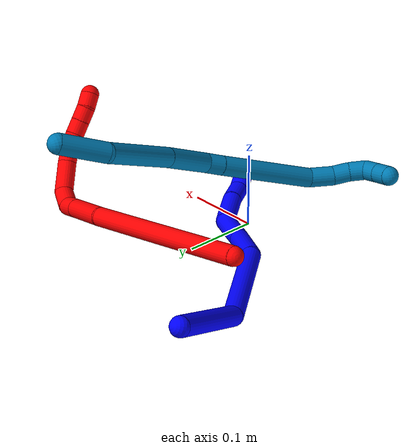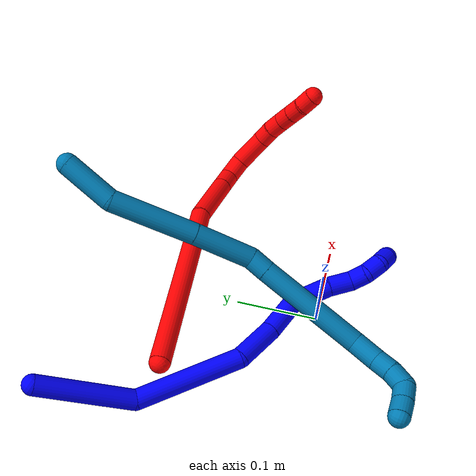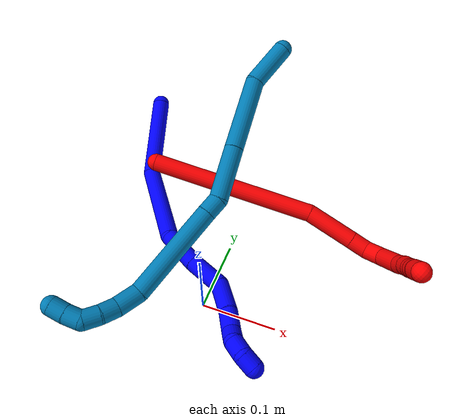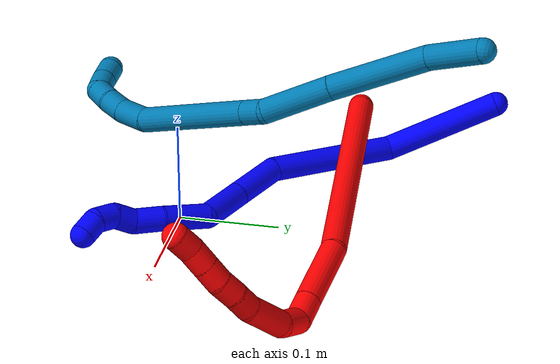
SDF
<sdf version="1.7">
 <world name="default">
  <model name="1">
   <static>0</static>
   <link name="1">
    <collision name="collision-cylinder-e_1_1_4">
     <pose>0.019959 -0.017338 -0.05426 2.83232 0.337024 1.65813</pose>
     <geometry><cylinder><radius>0.0125</radius><length>0.120717</length></cylinder></geometry>
     <surface>
      <friction><ode><mu>1.16</mu><mu2>1.16</mu2><slip1>0</slip1><slip2>0</slip2></ode></friction>
      <contact><ode><kp>1e+06</kp><kd>1</kd><max_vel>0</max_vel><min_depth>0.001</min_depth></ode></contact>
     </surface>
    </collision>
    <visual name="visual-cylinder-e_1_1_4">
     <pose>0.019959 -0.017338 -0.05426 2.83232 0.337024 1.65813</pose>
     <geometry><cylinder><radius>0.0125</radius><length>0.120717</length></cylinder></geometry>
     <material><ambient>0 0 1 1</ambient></material>
    </visual>
    <collision name="collision-cylinder-e_2_4_5">
     <pose>0.062798 -0.084125 -0.146135 2.22109 0.352846 0.690405</pose>
     <geometry><cylinder><radius>0.0125</radius><length>0.132418</length></cylinder></geometry>
     <surface>
      <friction><ode><mu>1.16</mu><mu2>1.16</mu2><slip1>0</slip1><slip2>0</slip2></ode></friction>
      <contact><ode><kp>1e+06</kp><kd>1</kd><max_vel>0</max_vel><min_depth>0.001</min_depth></ode></contact>
     </surface>
    </collision>
    <visual name="visual-cylinder-e_2_4_5">
     <pose>0.062798 -0.084125 -0.146135 2.22109 0.352846 0.690405</pose>
     <geometry><cylinder><radius>0.0125</radius><length>0.132418</length></cylinder></geometry>
     <material><ambient>0 0 1 1</ambient></material>
    </visual>
    <collision name="collision-cylinder-e_3_5_6">
     <pose>0.104698 -0.151912 -0.191782 1.98365 0.759797 1.09668</pose>
     <geometry><cylinder><radius>0.0125</radius><length>0.055229</length></cylinder></geometry>
     <surface>
      <friction><ode><mu>1.16</mu><mu2>1.16</mu2><slip1>0</slip1><slip2>0</slip2></ode></friction>
      <contact><ode><kp>1e+06</kp><kd>1</kd><max_vel>0</max_vel><min_depth>0.001</min_depth></ode></contact>
     </surface>
    </collision>
    <visual name="visual-cylinder-e_3_5_6">
     <pose>0.104698 -0.151912 -0.191782 1.98365 0.759797 1.09668</pose>
     <geometry><cylinder><radius>0.0125</radius><length>0.055229</length></cylinder></geometry>
     <material><ambient>0 0 1 1</ambient></material>
    </visual>
    <collision name="collision-cylinder-e_4_6_7">
     <pose>0.141054 -0.188532 -0.204009 1.79633 0.746039 0.913326</pose>
     <geometry><cylinder><radius>0.0125</radius><length>0.051082</length></cylinder></geometry>
     <surface>
      <friction><ode><mu>1.16</mu><mu2>1.16</mu2><slip1>0</slip1><slip2>0</slip2></ode></friction>
      <contact><ode><kp>1e+06</kp><kd>1</kd><max_vel>0</max_vel><min_depth>0.001</min_depth></ode></contact>
     </surface>
    </collision>
    <visual name="visual-cylinder-e_4_6_7">
     <pose>0.141054 -0.188532 -0.204009 1.79633 0.746039 0.913326</pose>
     <geometry><cylinder><radius>0.0125</radius><length>0.051082</length></cylinder></geometry>
     <material><ambient>0 0 1 1</ambient></material>
    </visual>
    <collision name="collision-cylinder-e_5_7_8">
     <pose>0.164236 -0.226201 -0.220756 2.14538 0.247926 0.450449</pose>
     <geometry><cylinder><radius>0.0125</radius><length>0.04765</length></cylinder></geometry>
     <surface>
      <friction><ode><mu>1.16</mu><mu2>1.16</mu2><slip1>0</slip1><slip2>0</slip2></ode></friction>
      <contact><ode><kp>1e+06</kp><kd>1</kd><max_vel>0</max_vel><min_depth>0.001</min_depth></ode></contact>
     </surface>
    </collision>
    <visual name="visual-cylinder-e_5_7_8">
     <pose>0.164236 -0.226201 -0.220756 2.14538 0.247926 0.450449</pose>
     <geometry><cylinder><radius>0.0125</radius><length>0.04765</length></cylinder></geometry>
     <material><ambient>0 0 1 1</ambient></material>
    </visual>
    <collision name="collision-cylinder-e_6_8_9">
     <pose>0.173553 -0.256266 -0.24294 2.30473 0.236818 0.522802</pose>
     <geometry><cylinder><radius>0.0125</radius><length>0.029584</length></cylinder></geometry>
     <surface>
      <friction><ode><mu>1.16</mu><mu2>1.16</mu2><slip1>0</slip1><slip2>0</slip2></ode></friction>
      <contact><ode><kp>1e+06</kp><kd>1</kd><max_vel>0</max_vel><min_depth>0.001</min_depth></ode></contact>
     </surface>
    </collision>
    <visual name="visual-cylinder-e_6_8_9">
     <pose>0.173553 -0.256266 -0.24294 2.30473 0.236818 0.522802</pose>
     <geometry><cylinder><radius>0.0125</radius><length>0.029584</length></cylinder></geometry>
     <material><ambient>0 0 1 1</ambient></material>
    </visual>
    <collision name="collision-cylinder-e_7_9_10">
     <pose>0.176508 -0.276547 -0.256816 1.98696 -0.049046 -0.075279</pose>
     <geometry><cylinder><radius>0.0125</radius><length>0.021025</length></cylinder></geometry>
     <surface>
      <friction><ode><mu>1.16</mu><mu2>1.16</mu2><slip1>0</slip1><slip2>0</slip2></ode></friction>
      <contact><ode><kp>1e+06</kp><kd>1</kd><max_vel>0</max_vel><min_depth>0.001</min_depth></ode></contact>
     </surface>
    </collision>
    <visual name="visual-cylinder-e_7_9_10">
     <pose>0.176508 -0.276547 -0.256816 1.98696 -0.049046 -0.075279</pose>
     <geometry><cylinder><radius>0.0125</radius><length>0.021025</length></cylinder></geometry>
     <material><ambient>0 0 1 1</ambient></material>
    </visual>
    <collision name="collision-cylinder-e_8_10_11">
     <pose>0.181027 -0.295027 -0.264874 1.97657 0.480416 0.711951</pose>
     <geometry><cylinder><radius>0.0125</radius><length>0.021787</length></cylinder></geometry>
     <surface>
      <friction><ode><mu>1.16</mu><mu2>1.16</mu2><slip1>0</slip1><slip2>0</slip2></ode></friction>
      <contact><ode><kp>1e+06</kp><kd>1</kd><max_vel>0</max_vel><min_depth>0.001</min_depth></ode></contact>
     </surface>
    </collision>
    <visual name="visual-cylinder-e_8_10_11">
     <pose>0.181027 -0.295027 -0.264874 1.97657 0.480416 0.711951</pose>
     <geometry><cylinder><radius>0.0125</radius><length>0.021787</length></cylinder></geometry>
     <material><ambient>0 0 1 1</ambient></material>
    </visual>
    <collision name="collision-cylinder-e_9_11_2">
     <pose>0.194608 -0.30855 -0.271928 2.17981 0.985376 1.59932</pose>
     <geometry><cylinder><radius>0.0125</radius><length>0.020508</length></cylinder></geometry>
     <surface>
      <friction><ode><mu>1.16</mu><mu2>1.16</mu2><slip1>0</slip1><slip2>0</slip2></ode></friction>
      <contact><ode><kp>1e+06</kp><kd>1</kd><max_vel>0</max_vel><min_depth>0.001</min_depth></ode></contact>
     </surface>
    </collision>
    <visual name="visual-cylinder-e_9_11_2">
     <pose>0.194608 -0.30855 -0.271928 2.17981 0.985376 1.59932</pose>
     <geometry><cylinder><radius>0.0125</radius><length>0.020508</length></cylinder></geometry>
     <material><ambient>0 0 1 1</ambient></material>
    </visual>
    <collision name="collision-sphere-2">
     <pose>0.203155 -0.313197 -0.275169 0 -0 0</pose>
     <geometry><sphere><radius>0.0125</radius></sphere></geometry>
     <surface>
      <friction><ode><mu>1.16</mu><mu2>1.16</mu2><slip1>0</slip1><slip2>0</slip2></ode></friction>
      <contact><ode><kp>1e+06</kp><kd>1</kd><max_vel>0</max_vel><min_depth>0.001</min_depth></ode></contact>
     </surface>
    </collision>
    <visual name="visual-sphere-2">
     <pose>0.203155 -0.313197 -0.275169 0 -0 0</pose>
     <geometry><sphere><radius>0.0125</radius></sphere></geometry>
     <material><ambient>0 0 1 1</ambient></material>
    </visual>
    <collision name="collision-sphere-11">
     <pose>0.186062 -0.303903 -0.268687 0 -0 0</pose>
     <geometry><sphere><radius>0.0125</radius></sphere></geometry>
     <surface>
      <friction><ode><mu>1.16</mu><mu2>1.16</mu2><slip1>0</slip1><slip2>0</slip2></ode></friction>
      <contact><ode><kp>1e+06</kp><kd>1</kd><max_vel>0</max_vel><min_depth>0.001</min_depth></ode></contact>
     </surface>
    </collision>
    <visual name="visual-sphere-11">
     <pose>0.186062 -0.303903 -0.268687 0 -0 0</pose>
     <geometry><sphere><radius>0.0125</radius></sphere></geometry>
     <material><ambient>0 0 1 1</ambient></material>
    </visual>
    <collision name="collision-sphere-10">
     <pose>0.175993 -0.286151 -0.261061 0 -0 0</pose>
     <geometry><sphere><radius>0.0125</radius></sphere></geometry>
     <surface>
      <friction><ode><mu>1.16</mu><mu2>1.16</mu2><slip1>0</slip1><slip2>0</slip2></ode></friction>
      <contact><ode><kp>1e+06</kp><kd>1</kd><max_vel>0</max_vel><min_depth>0.001</min_depth></ode></contact>
     </surface>
    </collision>
    <visual name="visual-sphere-10">
     <pose>0.175993 -0.286151 -0.261061 0 -0 0</pose>
     <geometry><sphere><radius>0.0125</radius></sphere></geometry>
     <material><ambient>0 0 1 1</ambient></material>
    </visual>
    <collision name="collision-sphere-9">
     <pose>0.177023 -0.266943 -0.252571 0 -0 0</pose>
     <geometry><sphere><radius>0.0125</radius></sphere></geometry>
     <surface>
      <friction><ode><mu>1.16</mu><mu2>1.16</mu2><slip1>0</slip1><slip2>0</slip2></ode></friction>
      <contact><ode><kp>1e+06</kp><kd>1</kd><max_vel>0</max_vel><min_depth>0.001</min_depth></ode></contact>
     </surface>
    </collision>
    <visual name="visual-sphere-9">
     <pose>0.177023 -0.266943 -0.252571 0 -0 0</pose>
     <geometry><sphere><radius>0.0125</radius></sphere></geometry>
     <material><ambient>0 0 1 1</ambient></material>
    </visual>
    <collision name="collision-sphere-4">
     <pose>0.039919 -0.034675 -0.10852 0 -0 0</pose>
     <geometry><sphere><radius>0.0125</radius></sphere></geometry>
     <surface>
      <friction><ode><mu>1.16</mu><mu2>1.16</mu2><slip1>0</slip1><slip2>0</slip2></ode></friction>
      <contact><ode><kp>1e+06</kp><kd>1</kd><max_vel>0</max_vel><min_depth>0.001</min_depth></ode></contact>
     </surface>
    </collision>
    <visual name="visual-sphere-4">
     <pose>0.039919 -0.034675 -0.10852 0 -0 0</pose>
     <geometry><sphere><radius>0.0125</radius></sphere></geometry>
     <material><ambient>0 0 1 1</ambient></material>
    </visual>
    <collision name="collision-sphere-1">
     <geometry><sphere><radius>0.0125</radius></sphere></geometry>
     <surface>
      <friction><ode><mu>1.16</mu><mu2>1.16</mu2><slip1>0</slip1><slip2>0</slip2></ode></friction>
      <contact><ode><kp>1e+06</kp><kd>1</kd><max_vel>0</max_vel><min_depth>0.001</min_depth></ode></contact>
     </surface>
    </collision>
    <visual name="visual-sphere-1">
     <geometry><sphere><radius>0.0125</radius></sphere></geometry>
     <material><ambient>0 0 1 1</ambient></material>
    </visual>
    <collision name="collision-sphere-8">
     <pose>0.170083 -0.245589 -0.233309 0 -0 0</pose>
     <geometry><sphere><radius>0.0125</radius></sphere></geometry>
     <surface>
      <friction><ode><mu>1.16</mu><mu2>1.16</mu2><slip1>0</slip1><slip2>0</slip2></ode></friction>
      <contact><ode><kp>1e+06</kp><kd>1</kd><max_vel>0</max_vel><min_depth>0.001</min_depth></ode></contact>
     </surface>
    </collision>
    <visual name="visual-sphere-8">
     <pose>0.170083 -0.245589 -0.233309 0 -0 0</pose>
     <geometry><sphere><radius>0.0125</radius></sphere></geometry>
     <material><ambient>0 0 1 1</ambient></material>
    </visual>
    <collision name="collision-sphere-5">
     <pose>0.085678 -0.133574 -0.18375 0 -0 0</pose>
     <geometry><sphere><radius>0.0125</radius></sphere></geometry>
     <surface>
      <friction><ode><mu>1.16</mu><mu2>1.16</mu2><slip1>0</slip1><slip2>0</slip2></ode></friction>
      <contact><ode><kp>1e+06</kp><kd>1</kd><max_vel>0</max_vel><min_depth>0.001</min_depth></ode></contact>
     </surface>
    </collision>
    <visual name="visual-sphere-5">
     <pose>0.085678 -0.133574 -0.18375 0 -0 0</pose>
     <geometry><sphere><radius>0.0125</radius></sphere></geometry>
     <material><ambient>0 0 1 1</ambient></material>
    </visual>
    <collision name="collision-sphere-6">
     <pose>0.123718 -0.17025 -0.199815 0 -0 0</pose>
     <geometry><sphere><radius>0.0125</radius></sphere></geometry>
     <surface>
      <friction><ode><mu>1.16</mu><mu2>1.16</mu2><slip1>0</slip1><slip2>0</slip2></ode></friction>
      <contact><ode><kp>1e+06</kp><kd>1</kd><max_vel>0</max_vel><min_depth>0.001</min_depth></ode></contact>
     </surface>
    </collision>
    <visual name="visual-sphere-6">
     <pose>0.123718 -0.17025 -0.199815 0 -0 0</pose>
     <geometry><sphere><radius>0.0125</radius></sphere></geometry>
     <material><ambient>0 0 1 1</ambient></material>
    </visual>
    <collision name="collision-sphere-7">
     <pose>0.15839 -0.206814 -0.208204 0 -0 0</pose>
     <geometry><sphere><radius>0.0125</radius></sphere></geometry>
     <surface>
      <friction><ode><mu>1.16</mu><mu2>1.16</mu2><slip1>0</slip1><slip2>0</slip2></ode></friction>
      <contact><ode><kp>1e+06</kp><kd>1</kd><max_vel>0</max_vel><min_depth>0.001</min_depth></ode></contact>
     </surface>
    </collision>
    <visual name="visual-sphere-7">
     <pose>0.15839 -0.206814 -0.208204 0 -0 0</pose>
     <geometry><sphere><radius>0.0125</radius></sphere></geometry>
     <material><ambient>0 0 1 1</ambient></material>
    </visual>
    <inertial>
     <pose>0.096638 -0.136366 -0.162735 0 -0 0</pose>
     <mass>0.5</mass>
     <inertia><ixx>0.00046</ixx><ixy>0</ixy><ixz>0</ixz><iyy>0.000238</iyy><iyz>0</iyz><izz>6.1e-05</izz></inertia>
    </inertial>
   </link>
   <pose>-0.19469 0.288514 0.060699 -1.00611 0.673209 0.157013</pose>
  </model>
  <model name="2">
   <static>0</static>
   <link name="2">
    <collision name="collision-cylinder-e_1_1_4">
     <pose>0.040226 0.02099 0.108303 -0.19143 0.349651 -0.033913</pose>
     <geometry><cylinder><radius>0.0125</radius><length>0.234846</length></cylinder></geometry>
     <surface>
      <friction><ode><mu>1.16</mu><mu2>1.16</mu2><slip1>0</slip1><slip2>0</slip2></ode></friction>
      <contact><ode><kp>1e+06</kp><kd>1</kd><max_vel>0</max_vel><min_depth>0.001</min_depth></ode></contact>
     </surface>
    </collision>
    <visual name="visual-cylinder-e_1_1_4">
     <pose>0.040226 0.02099 0.108303 -0.19143 0.349651 -0.033913</pose>
     <geometry><cylinder><radius>0.0125</radius><length>0.234846</length></cylinder></geometry>
     <material><ambient>1 0 0 1</ambient></material>
    </visual>
    <collision name="collision-cylinder-e_2_4_5">
     <pose>0.084315 0.044741 0.2509 -0.080357 0.111834 -0.0045</pose>
     <geometry><cylinder><radius>0.0125</radius><length>0.069241</length></cylinder></geometry>
     <surface>
      <friction><ode><mu>1.16</mu><mu2>1.16</mu2><slip1>0</slip1><slip2>0</slip2></ode></friction>
      <contact><ode><kp>1e+06</kp><kd>1</kd><max_vel>0</max_vel><min_depth>0.001</min_depth></ode></contact>
     </surface>
    </collision>
    <visual name="visual-cylinder-e_2_4_5">
     <pose>0.084315 0.044741 0.2509 -0.080357 0.111834 -0.0045</pose>
     <geometry><cylinder><radius>0.0125</radius><length>0.069241</length></cylinder></geometry>
     <material><ambient>1 0 0 1</ambient></material>
    </visual>
    <collision name="collision-cylinder-e_3_5_6">
     <pose>0.08964 0.048334 0.297953 -0.06509 0.113775 -0.003708</pose>
     <geometry><cylinder><radius>0.0125</radius><length>0.025742</length></cylinder></geometry>
     <surface>
      <friction><ode><mu>1.16</mu><mu2>1.16</mu2><slip1>0</slip1><slip2>0</slip2></ode></friction>
      <contact><ode><kp>1e+06</kp><kd>1</kd><max_vel>0</max_vel><min_depth>0.001</min_depth></ode></contact>
     </surface>
    </collision>
    <visual name="visual-cylinder-e_3_5_6">
     <pose>0.08964 0.048334 0.297953 -0.06509 0.113775 -0.003708</pose>
     <geometry><cylinder><radius>0.0125</radius><length>0.025742</length></cylinder></geometry>
     <material><ambient>1 0 0 1</ambient></material>
    </visual>
    <collision name="collision-cylinder-e_4_6_7">
     <pose>0.089208 0.057508 0.321039 -0.679606 -0.14167 0.050156</pose>
     <geometry><cylinder><radius>0.0125</radius><length>0.026816</length></cylinder></geometry>
     <surface>
      <friction><ode><mu>1.16</mu><mu2>1.16</mu2><slip1>0</slip1><slip2>0</slip2></ode></friction>
      <contact><ode><kp>1e+06</kp><kd>1</kd><max_vel>0</max_vel><min_depth>0.001</min_depth></ode></contact>
     </surface>
    </collision>
    <visual name="visual-cylinder-e_4_6_7">
     <pose>0.089208 0.057508 0.321039 -0.679606 -0.14167 0.050156</pose>
     <geometry><cylinder><radius>0.0125</radius><length>0.026816</length></cylinder></geometry>
     <material><ambient>1 0 0 1</ambient></material>
    </visual>
    <collision name="collision-cylinder-e_5_7_8">
     <pose>0.078689 0.083511 0.340055 -1.11343 -0.413029 0.259317</pose>
     <geometry><cylinder><radius>0.0125</radius><length>0.042982</length></cylinder></geometry>
     <surface>
      <friction><ode><mu>1.16</mu><mu2>1.16</mu2><slip1>0</slip1><slip2>0</slip2></ode></friction>
      <contact><ode><kp>1e+06</kp><kd>1</kd><max_vel>0</max_vel><min_depth>0.001</min_depth></ode></contact>
     </surface>
    </collision>
    <visual name="visual-cylinder-e_5_7_8">
     <pose>0.078689 0.083511 0.340055 -1.11343 -0.413029 0.259317</pose>
     <geometry><cylinder><radius>0.0125</radius><length>0.042982</length></cylinder></geometry>
     <material><ambient>1 0 0 1</ambient></material>
    </visual>
    <collision name="collision-cylinder-e_6_8_9">
     <pose>0.065761 0.110147 0.350357 -1.3934 -0.440777 0.37057</pose>
     <geometry><cylinder><radius>0.0125</radius><length>0.020164</length></cylinder></geometry>
     <surface>
      <friction><ode><mu>1.16</mu><mu2>1.16</mu2><slip1>0</slip1><slip2>0</slip2></ode></friction>
      <contact><ode><kp>1e+06</kp><kd>1</kd><max_vel>0</max_vel><min_depth>0.001</min_depth></ode></contact>
     </surface>
    </collision>
    <visual name="visual-cylinder-e_6_8_9">
     <pose>0.065761 0.110147 0.350357 -1.3934 -0.440777 0.37057</pose>
     <geometry><cylinder><radius>0.0125</radius><length>0.020164</length></cylinder></geometry>
     <material><ambient>1 0 0 1</ambient></material>
    </visual>
    <collision name="collision-cylinder-e_7_9_10">
     <pose>0.055994 0.127478 0.353376 -1.40358 -0.572823 0.488009</pose>
     <geometry><cylinder><radius>0.0125</radius><length>0.020167</length></cylinder></geometry>
     <surface>
      <friction><ode><mu>1.16</mu><mu2>1.16</mu2><slip1>0</slip1><slip2>0</slip2></ode></friction>
      <contact><ode><kp>1e+06</kp><kd>1</kd><max_vel>0</max_vel><min_depth>0.001</min_depth></ode></contact>
     </surface>
    </collision>
    <visual name="visual-cylinder-e_7_9_10">
     <pose>0.055994 0.127478 0.353376 -1.40358 -0.572823 0.488009</pose>
     <geometry><cylinder><radius>0.0125</radius><length>0.020167</length></cylinder></geometry>
     <material><ambient>1 0 0 1</ambient></material>
    </visual>
    <collision name="collision-cylinder-e_8_10_11">
     <pose>0.044956 0.144144 0.354418 -1.61514 -0.590266 0.615416</pose>
     <geometry><cylinder><radius>0.0125</radius><length>0.020025</length></cylinder></geometry>
     <surface>
      <friction><ode><mu>1.16</mu><mu2>1.16</mu2><slip1>0</slip1><slip2>0</slip2></ode></friction>
      <contact><ode><kp>1e+06</kp><kd>1</kd><max_vel>0</max_vel><min_depth>0.001</min_depth></ode></contact>
     </surface>
    </collision>
    <visual name="visual-cylinder-e_8_10_11">
     <pose>0.044956 0.144144 0.354418 -1.61514 -0.590266 0.615416</pose>
     <geometry><cylinder><radius>0.0125</radius><length>0.020025</length></cylinder></geometry>
     <material><ambient>1 0 0 1</ambient></material>
    </visual>
    <collision name="collision-cylinder-e_9_11_12">
     <pose>0.033812 0.160754 0.353675 -1.61583 -0.590733 0.616293</pose>
     <geometry><cylinder><radius>0.0125</radius><length>0.020009</length></cylinder></geometry>
     <surface>
      <friction><ode><mu>1.16</mu><mu2>1.16</mu2><slip1>0</slip1><slip2>0</slip2></ode></friction>
      <contact><ode><kp>1e+06</kp><kd>1</kd><max_vel>0</max_vel><min_depth>0.001</min_depth></ode></contact>
     </surface>
    </collision>
    <visual name="visual-cylinder-e_9_11_12">
     <pose>0.033812 0.160754 0.353675 -1.61583 -0.590733 0.616293</pose>
     <geometry><cylinder><radius>0.0125</radius><length>0.020009</length></cylinder></geometry>
     <material><ambient>1 0 0 1</ambient></material>
    </visual>
    <collision name="collision-cylinder-e_10_12_2">
     <pose>0.023206 0.177564 0.354831 -1.39288 -0.527218 0.443939</pose>
     <geometry><cylinder><radius>0.0125</radius><length>0.020008</length></cylinder></geometry>
     <surface>
      <friction><ode><mu>1.16</mu><mu2>1.16</mu2><slip1>0</slip1><slip2>0</slip2></ode></friction>
      <contact><ode><kp>1e+06</kp><kd>1</kd><max_vel>0</max_vel><min_depth>0.001</min_depth></ode></contact>
     </surface>
    </collision>
    <visual name="visual-cylinder-e_10_12_2">
     <pose>0.023206 0.177564 0.354831 -1.39288 -0.527218 0.443939</pose>
     <geometry><cylinder><radius>0.0125</radius><length>0.020008</length></cylinder></geometry>
     <material><ambient>1 0 0 1</ambient></material>
    </visual>
    <collision name="collision-sphere-2">
     <pose>0.018173 0.186073 0.356361 0 -0 0</pose>
     <geometry><sphere><radius>0.0125</radius></sphere></geometry>
     <surface>
      <friction><ode><mu>1.16</mu><mu2>1.16</mu2><slip1>0</slip1><slip2>0</slip2></ode></friction>
      <contact><ode><kp>1e+06</kp><kd>1</kd><max_vel>0</max_vel><min_depth>0.001</min_depth></ode></contact>
     </surface>
    </collision>
    <visual name="visual-sphere-2">
     <pose>0.018173 0.186073 0.356361 0 -0 0</pose>
     <geometry><sphere><radius>0.0125</radius></sphere></geometry>
     <material><ambient>1 0 0 1</ambient></material>
    </visual>
    <collision name="collision-sphere-12">
     <pose>0.028239 0.169055 0.353301 0 -0 0</pose>
     <geometry><sphere><radius>0.0125</radius></sphere></geometry>
     <surface>
      <friction><ode><mu>1.16</mu><mu2>1.16</mu2><slip1>0</slip1><slip2>0</slip2></ode></friction>
      <contact><ode><kp>1e+06</kp><kd>1</kd><max_vel>0</max_vel><min_depth>0.001</min_depth></ode></contact>
     </surface>
    </collision>
    <visual name="visual-sphere-12">
     <pose>0.028239 0.169055 0.353301 0 -0 0</pose>
     <geometry><sphere><radius>0.0125</radius></sphere></geometry>
     <material><ambient>1 0 0 1</ambient></material>
    </visual>
    <collision name="collision-sphere-11">
     <pose>0.039384 0.152454 0.354049 0 -0 0</pose>
     <geometry><sphere><radius>0.0125</radius></sphere></geometry>
     <surface>
      <friction><ode><mu>1.16</mu><mu2>1.16</mu2><slip1>0</slip1><slip2>0</slip2></ode></friction>
      <contact><ode><kp>1e+06</kp><kd>1</kd><max_vel>0</max_vel><min_depth>0.001</min_depth></ode></contact>
     </surface>
    </collision>
    <visual name="visual-sphere-11">
     <pose>0.039384 0.152454 0.354049 0 -0 0</pose>
     <geometry><sphere><radius>0.0125</radius></sphere></geometry>
     <material><ambient>1 0 0 1</ambient></material>
    </visual>
    <collision name="collision-sphere-10">
     <pose>0.050529 0.135834 0.354786 0 -0 0</pose>
     <geometry><sphere><radius>0.0125</radius></sphere></geometry>
     <surface>
      <friction><ode><mu>1.16</mu><mu2>1.16</mu2><slip1>0</slip1><slip2>0</slip2></ode></friction>
      <contact><ode><kp>1e+06</kp><kd>1</kd><max_vel>0</max_vel><min_depth>0.001</min_depth></ode></contact>
     </surface>
    </collision>
    <visual name="visual-sphere-10">
     <pose>0.050529 0.135834 0.354786 0 -0 0</pose>
     <geometry><sphere><radius>0.0125</radius></sphere></geometry>
     <material><ambient>1 0 0 1</ambient></material>
    </visual>
    <collision name="collision-sphere-9">
     <pose>0.06146 0.119122 0.351966 0 -0 0</pose>
     <geometry><sphere><radius>0.0125</radius></sphere></geometry>
     <surface>
      <friction><ode><mu>1.16</mu><mu2>1.16</mu2><slip1>0</slip1><slip2>0</slip2></ode></friction>
      <contact><ode><kp>1e+06</kp><kd>1</kd><max_vel>0</max_vel><min_depth>0.001</min_depth></ode></contact>
     </surface>
    </collision>
    <visual name="visual-sphere-9">
     <pose>0.06146 0.119122 0.351966 0 -0 0</pose>
     <geometry><sphere><radius>0.0125</radius></sphere></geometry>
     <material><ambient>1 0 0 1</ambient></material>
    </visual>
    <collision name="collision-sphere-4">
     <pose>0.080451 0.041979 0.216606 0 -0 0</pose>
     <geometry><sphere><radius>0.0125</radius></sphere></geometry>
     <surface>
      <friction><ode><mu>1.16</mu><mu2>1.16</mu2><slip1>0</slip1><slip2>0</slip2></ode></friction>
      <contact><ode><kp>1e+06</kp><kd>1</kd><max_vel>0</max_vel><min_depth>0.001</min_depth></ode></contact>
     </surface>
    </collision>
    <visual name="visual-sphere-4">
     <pose>0.080451 0.041979 0.216606 0 -0 0</pose>
     <geometry><sphere><radius>0.0125</radius></sphere></geometry>
     <material><ambient>1 0 0 1</ambient></material>
    </visual>
    <collision name="collision-sphere-1">
     <geometry><sphere><radius>0.0125</radius></sphere></geometry>
     <surface>
      <friction><ode><mu>1.16</mu><mu2>1.16</mu2><slip1>0</slip1><slip2>0</slip2></ode></friction>
      <contact><ode><kp>1e+06</kp><kd>1</kd><max_vel>0</max_vel><min_depth>0.001</min_depth></ode></contact>
     </surface>
    </collision>
    <visual name="visual-sphere-1">
     <geometry><sphere><radius>0.0125</radius></sphere></geometry>
     <material><ambient>1 0 0 1</ambient></material>
    </visual>
    <collision name="collision-sphere-8">
     <pose>0.070063 0.101172 0.348747 0 -0 0</pose>
     <geometry><sphere><radius>0.0125</radius></sphere></geometry>
     <surface>
      <friction><ode><mu>1.16</mu><mu2>1.16</mu2><slip1>0</slip1><slip2>0</slip2></ode></friction>
      <contact><ode><kp>1e+06</kp><kd>1</kd><max_vel>0</max_vel><min_depth>0.001</min_depth></ode></contact>
     </surface>
    </collision>
    <visual name="visual-sphere-8">
     <pose>0.070063 0.101172 0.348747 0 -0 0</pose>
     <geometry><sphere><radius>0.0125</radius></sphere></geometry>
     <material><ambient>1 0 0 1</ambient></material>
    </visual>
    <collision name="collision-sphere-5">
     <pose>0.088179 0.047502 0.285193 0 -0 0</pose>
     <geometry><sphere><radius>0.0125</radius></sphere></geometry>
     <surface>
      <friction><ode><mu>1.16</mu><mu2>1.16</mu2><slip1>0</slip1><slip2>0</slip2></ode></friction>
      <contact><ode><kp>1e+06</kp><kd>1</kd><max_vel>0</max_vel><min_depth>0.001</min_depth></ode></contact>
     </surface>
    </collision>
    <visual name="visual-sphere-5">
     <pose>0.088179 0.047502 0.285193 0 -0 0</pose>
     <geometry><sphere><radius>0.0125</radius></sphere></geometry>
     <material><ambient>1 0 0 1</ambient></material>
    </visual>
    <collision name="collision-sphere-6">
     <pose>0.091101 0.049166 0.310714 0 -0 0</pose>
     <geometry><sphere><radius>0.0125</radius></sphere></geometry>
     <surface>
      <friction><ode><mu>1.16</mu><mu2>1.16</mu2><slip1>0</slip1><slip2>0</slip2></ode></friction>
      <contact><ode><kp>1e+06</kp><kd>1</kd><max_vel>0</max_vel><min_depth>0.001</min_depth></ode></contact>
     </surface>
    </collision>
    <visual name="visual-sphere-6">
     <pose>0.091101 0.049166 0.310714 0 -0 0</pose>
     <geometry><sphere><radius>0.0125</radius></sphere></geometry>
     <material><ambient>1 0 0 1</ambient></material>
    </visual>
    <collision name="collision-sphere-7">
     <pose>0.087315 0.065851 0.331363 0 -0 0</pose>
     <geometry><sphere><radius>0.0125</radius></sphere></geometry>
     <surface>
      <friction><ode><mu>1.16</mu><mu2>1.16</mu2><slip1>0</slip1><slip2>0</slip2></ode></friction>
      <contact><ode><kp>1e+06</kp><kd>1</kd><max_vel>0</max_vel><min_depth>0.001</min_depth></ode></contact>
     </surface>
    </collision>
    <visual name="visual-sphere-7">
     <pose>0.087315 0.065851 0.331363 0 -0 0</pose>
     <geometry><sphere><radius>0.0125</radius></sphere></geometry>
     <material><ambient>1 0 0 1</ambient></material>
    </visual>
    <inertial>
     <pose>0.055726 0.057701 0.218333 0 -0 0</pose>
     <mass>0.5</mass>
     <inertia>
      <ixx>0.001042</ixx>
      <ixy>0</ixy>
      <ixz>0</ixz>
      <iyy>0.001097</iyy>
      <iyz>0</iyz>
      <izz>-0.000553</izz>
     </inertia>
    </inertial>
   </link>
   <pose>-0.137973 0.156753 0.071999 1.91797 0.007775 1.28893</pose>
  </model>
  <model name="9">
   <static>0</static>
   <link name="9">
    <collision name="collision-cylinder-e_1_1_4">
     <pose>-0.008595 -0.007652 -0.028363 2.87809 -0.284638 -1.64886</pose>
     <geometry><cylinder><radius>0.0125</radius><length>0.061217</length></cylinder></geometry>
     <surface>
      <friction><ode><mu>1.16</mu><mu2>1.16</mu2><slip1>0</slip1><slip2>0</slip2></ode></friction>
      <contact><ode><kp>1e+06</kp><kd>1</kd><max_vel>0</max_vel><min_depth>0.001</min_depth></ode></contact>
     </surface>
    </collision>
    <visual name="visual-cylinder-e_1_1_4">
     <pose>-0.008595 -0.007652 -0.028363 2.87809 -0.284638 -1.64886</pose>
     <geometry><cylinder><radius>0.0125</radius><length>0.061217</length></cylinder></geometry>
     <material><ambient>0 0.490196 0.709804 1</ambient></material>
    </visual>
    <collision name="collision-cylinder-e_2_4_5">
     <pose>-0.039012 -0.009665 -0.101736 -3.01697 -0.448384 2.60742</pose>
     <geometry><cylinder><radius>0.0125</radius><length>0.100675</length></cylinder></geometry>
     <surface>
      <friction><ode><mu>1.16</mu><mu2>1.16</mu2><slip1>0</slip1><slip2>0</slip2></ode></friction>
      <contact><ode><kp>1e+06</kp><kd>1</kd><max_vel>0</max_vel><min_depth>0.001</min_depth></ode></contact>
     </surface>
    </collision>
    <visual name="visual-cylinder-e_2_4_5">
     <pose>-0.039012 -0.009665 -0.101736 -3.01697 -0.448384 2.60742</pose>
     <geometry><cylinder><radius>0.0125</radius><length>0.100675</length></cylinder></geometry>
     <material><ambient>0 0.490196 0.709804 1</ambient></material>
    </visual>
    <collision name="collision-cylinder-e_3_5_6">
     <pose>-0.077526 -0.000706 -0.177925 -3.03551 -0.489195 2.72243</pose>
     <geometry><cylinder><radius>0.0125</radius><length>0.071044</length></cylinder></geometry>
     <surface>
      <friction><ode><mu>1.16</mu><mu2>1.16</mu2><slip1>0</slip1><slip2>0</slip2></ode></friction>
      <contact><ode><kp>1e+06</kp><kd>1</kd><max_vel>0</max_vel><min_depth>0.001</min_depth></ode></contact>
     </surface>
    </collision>
    <visual name="visual-cylinder-e_3_5_6">
     <pose>-0.077526 -0.000706 -0.177925 -3.03551 -0.489195 2.72243</pose>
     <geometry><cylinder><radius>0.0125</radius><length>0.071044</length></cylinder></geometry>
     <material><ambient>0 0.490196 0.709804 1</ambient></material>
    </visual>
    <collision name="collision-cylinder-e_4_6_7">
     <pose>-0.09703 -0.000391 -0.219747 2.86639 -0.248933 -1.4695</pose>
     <geometry><cylinder><radius>0.0125</radius><length>0.022822</length></cylinder></geometry>
     <surface>
      <friction><ode><mu>1.16</mu><mu2>1.16</mu2><slip1>0</slip1><slip2>0</slip2></ode></friction>
      <contact><ode><kp>1e+06</kp><kd>1</kd><max_vel>0</max_vel><min_depth>0.001</min_depth></ode></contact>
     </surface>
    </collision>
    <visual name="visual-cylinder-e_4_6_7">
     <pose>-0.09703 -0.000391 -0.219747 2.86639 -0.248933 -1.4695</pose>
     <geometry><cylinder><radius>0.0125</radius><length>0.022822</length></cylinder></geometry>
     <material><ambient>0 0.490196 0.709804 1</ambient></material>
    </visual>
    <collision name="collision-cylinder-e_5_7_8">
     <pose>-0.115859 -0.018165 -0.290638 2.9012 -0.252697 -1.62122</pose>
     <geometry><cylinder><radius>0.0125</radius><length>0.128132</length></cylinder></geometry>
     <surface>
      <friction><ode><mu>1.16</mu><mu2>1.16</mu2><slip1>0</slip1><slip2>0</slip2></ode></friction>
      <contact><ode><kp>1e+06</kp><kd>1</kd><max_vel>0</max_vel><min_depth>0.001</min_depth></ode></contact>
     </surface>
    </collision>
    <visual name="visual-cylinder-e_5_7_8">
     <pose>-0.115859 -0.018165 -0.290638 2.9012 -0.252697 -1.62122</pose>
     <geometry><cylinder><radius>0.0125</radius><length>0.128132</length></cylinder></geometry>
     <material><ambient>0 0.490196 0.709804 1</ambient></material>
    </visual>
    <collision name="collision-cylinder-e_6_8_9">
     <pose>-0.130461 -0.037774 -0.366115 2.83385 0.088331 0.555167</pose>
     <geometry><cylinder><radius>0.0125</radius><length>0.032085</length></cylinder></geometry>
     <surface>
      <friction><ode><mu>1.16</mu><mu2>1.16</mu2><slip1>0</slip1><slip2>0</slip2></ode></friction>
      <contact><ode><kp>1e+06</kp><kd>1</kd><max_vel>0</max_vel><min_depth>0.001</min_depth></ode></contact>
     </surface>
    </collision>
    <visual name="visual-cylinder-e_6_8_9">
     <pose>-0.130461 -0.037774 -0.366115 2.83385 0.088331 0.555167</pose>
     <geometry><cylinder><radius>0.0125</radius><length>0.032085</length></cylinder></geometry>
     <material><ambient>0 0.490196 0.709804 1</ambient></material>
    </visual>
    <collision name="collision-cylinder-e_7_9_10">
     <pose>-0.125807 -0.045771 -0.391312 2.83489 0.300363 1.54959</pose>
     <geometry><cylinder><radius>0.0125</radius><length>0.021891</length></cylinder></geometry>
     <surface>
      <friction><ode><mu>1.16</mu><mu2>1.16</mu2><slip1>0</slip1><slip2>0</slip2></ode></friction>
      <contact><ode><kp>1e+06</kp><kd>1</kd><max_vel>0</max_vel><min_depth>0.001</min_depth></ode></contact>
     </surface>
    </collision>
    <visual name="visual-cylinder-e_7_9_10">
     <pose>-0.125807 -0.045771 -0.391312 2.83489 0.300363 1.54959</pose>
     <geometry><cylinder><radius>0.0125</radius><length>0.021891</length></cylinder></geometry>
     <material><ambient>0 0.490196 0.709804 1</ambient></material>
    </visual>
    <collision name="collision-cylinder-e_8_10_11">
     <pose>-0.119304 -0.05393 -0.410419 2.64079 0.303653 1.07819</pose>
     <geometry><cylinder><radius>0.0125</radius><length>0.021836</length></cylinder></geometry>
     <surface>
      <friction><ode><mu>1.16</mu><mu2>1.16</mu2><slip1>0</slip1><slip2>0</slip2></ode></friction>
      <contact><ode><kp>1e+06</kp><kd>1</kd><max_vel>0</max_vel><min_depth>0.001</min_depth></ode></contact>
     </surface>
    </collision>
    <visual name="visual-cylinder-e_8_10_11">
     <pose>-0.119304 -0.05393 -0.410419 2.64079 0.303653 1.07819</pose>
     <geometry><cylinder><radius>0.0125</radius><length>0.021836</length></cylinder></geometry>
     <material><ambient>0 0.490196 0.709804 1</ambient></material>
    </visual>
    <collision name="collision-cylinder-e_9_11_12">
     <pose>-0.111519 -0.06773 -0.421726 1.81239 0.462741 0.584175</pose>
     <geometry><cylinder><radius>0.0125</radius><length>0.020251</length></cylinder></geometry>
     <surface>
      <friction><ode><mu>1.16</mu><mu2>1.16</mu2><slip1>0</slip1><slip2>0</slip2></ode></friction>
      <contact><ode><kp>1e+06</kp><kd>1</kd><max_vel>0</max_vel><min_depth>0.001</min_depth></ode></contact>
     </surface>
    </collision>
    <visual name="visual-cylinder-e_9_11_12">
     <pose>-0.111519 -0.06773 -0.421726 1.81239 0.462741 0.584175</pose>
     <geometry><cylinder><radius>0.0125</radius><length>0.020251</length></cylinder></geometry>
     <material><ambient>0 0.490196 0.709804 1</ambient></material>
    </visual>
    <collision name="collision-cylinder-e_10_12_2">
     <pose>-0.102116 -0.085202 -0.425063 1.70485 0.508906 0.578362</pose>
     <geometry><cylinder><radius>0.0125</radius><length>0.020046</length></cylinder></geometry>
     <surface>
      <friction><ode><mu>1.16</mu><mu2>1.16</mu2><slip1>0</slip1><slip2>0</slip2></ode></friction>
      <contact><ode><kp>1e+06</kp><kd>1</kd><max_vel>0</max_vel><min_depth>0.001</min_depth></ode></contact>
     </surface>
    </collision>
    <visual name="visual-cylinder-e_10_12_2">
     <pose>-0.102116 -0.085202 -0.425063 1.70485 0.508906 0.578362</pose>
     <geometry><cylinder><radius>0.0125</radius><length>0.020046</length></cylinder></geometry>
     <material><ambient>0 0.490196 0.709804 1</ambient></material>
    </visual>
    <collision name="collision-sphere-2">
     <pose>-0.097232 -0.093877 -0.426233 0 -0 0</pose>
     <geometry><sphere><radius>0.0125</radius></sphere></geometry>
     <surface>
      <friction><ode><mu>1.16</mu><mu2>1.16</mu2><slip1>0</slip1><slip2>0</slip2></ode></friction>
      <contact><ode><kp>1e+06</kp><kd>1</kd><max_vel>0</max_vel><min_depth>0.001</min_depth></ode></contact>
     </surface>
    </collision>
    <visual name="visual-sphere-2">
     <pose>-0.097232 -0.093877 -0.426233 0 -0 0</pose>
     <geometry><sphere><radius>0.0125</radius></sphere></geometry>
     <material><ambient>0 0.490196 0.709804 1</ambient></material>
    </visual>
    <collision name="collision-sphere-12">
     <pose>-0.106999 -0.076528 -0.423894 0 -0 0</pose>
     <geometry><sphere><radius>0.0125</radius></sphere></geometry>
     <surface>
      <friction><ode><mu>1.16</mu><mu2>1.16</mu2><slip1>0</slip1><slip2>0</slip2></ode></friction>
      <contact><ode><kp>1e+06</kp><kd>1</kd><max_vel>0</max_vel><min_depth>0.001</min_depth></ode></contact>
     </surface>
    </collision>
    <visual name="visual-sphere-12">
     <pose>-0.106999 -0.076528 -0.423894 0 -0 0</pose>
     <geometry><sphere><radius>0.0125</radius></sphere></geometry>
     <material><ambient>0 0.490196 0.709804 1</ambient></material>
    </visual>
    <collision name="collision-sphere-11">
     <pose>-0.11604 -0.058933 -0.419558 0 -0 0</pose>
     <geometry><sphere><radius>0.0125</radius></sphere></geometry>
     <surface>
      <friction><ode><mu>1.16</mu><mu2>1.16</mu2><slip1>0</slip1><slip2>0</slip2></ode></friction>
      <contact><ode><kp>1e+06</kp><kd>1</kd><max_vel>0</max_vel><min_depth>0.001</min_depth></ode></contact>
     </surface>
    </collision>
    <visual name="visual-sphere-11">
     <pose>-0.11604 -0.058933 -0.419558 0 -0 0</pose>
     <geometry><sphere><radius>0.0125</radius></sphere></geometry>
     <material><ambient>0 0.490196 0.709804 1</ambient></material>
    </visual>
    <collision name="collision-sphere-10">
     <pose>-0.122569 -0.048928 -0.401279 0 -0 0</pose>
     <geometry><sphere><radius>0.0125</radius></sphere></geometry>
     <surface>
      <friction><ode><mu>1.16</mu><mu2>1.16</mu2><slip1>0</slip1><slip2>0</slip2></ode></friction>
      <contact><ode><kp>1e+06</kp><kd>1</kd><max_vel>0</max_vel><min_depth>0.001</min_depth></ode></contact>
     </surface>
    </collision>
    <visual name="visual-sphere-10">
     <pose>-0.122569 -0.048928 -0.401279 0 -0 0</pose>
     <geometry><sphere><radius>0.0125</radius></sphere></geometry>
     <material><ambient>0 0.490196 0.709804 1</ambient></material>
    </visual>
    <collision name="collision-sphere-9">
     <pose>-0.129046 -0.042615 -0.381344 0 -0 0</pose>
     <geometry><sphere><radius>0.0125</radius></sphere></geometry>
     <surface>
      <friction><ode><mu>1.16</mu><mu2>1.16</mu2><slip1>0</slip1><slip2>0</slip2></ode></friction>
      <contact><ode><kp>1e+06</kp><kd>1</kd><max_vel>0</max_vel><min_depth>0.001</min_depth></ode></contact>
     </surface>
    </collision>
    <visual name="visual-sphere-9">
     <pose>-0.129046 -0.042615 -0.381344 0 -0 0</pose>
     <geometry><sphere><radius>0.0125</radius></sphere></geometry>
     <material><ambient>0 0.490196 0.709804 1</ambient></material>
    </visual>
    <collision name="collision-sphere-4">
     <pose>-0.01719 -0.015303 -0.056726 0 -0 0</pose>
     <geometry><sphere><radius>0.0125</radius></sphere></geometry>
     <surface>
      <friction><ode><mu>1.16</mu><mu2>1.16</mu2><slip1>0</slip1><slip2>0</slip2></ode></friction>
      <contact><ode><kp>1e+06</kp><kd>1</kd><max_vel>0</max_vel><min_depth>0.001</min_depth></ode></contact>
     </surface>
    </collision>
    <visual name="visual-sphere-4">
     <pose>-0.01719 -0.015303 -0.056726 0 -0 0</pose>
     <geometry><sphere><radius>0.0125</radius></sphere></geometry>
     <material><ambient>0 0.490196 0.709804 1</ambient></material>
    </visual>
    <collision name="collision-sphere-1">
     <geometry><sphere><radius>0.0125</radius></sphere></geometry>
     <surface>
      <friction><ode><mu>1.16</mu><mu2>1.16</mu2><slip1>0</slip1><slip2>0</slip2></ode></friction>
      <contact><ode><kp>1e+06</kp><kd>1</kd><max_vel>0</max_vel><min_depth>0.001</min_depth></ode></contact>
     </surface>
    </collision>
    <visual name="visual-sphere-1">
     <geometry><sphere><radius>0.0125</radius></sphere></geometry>
     <material><ambient>0 0.490196 0.709804 1</ambient></material>
    </visual>
    <collision name="collision-sphere-8">
     <pose>-0.131876 -0.032933 -0.350886 0 -0 0</pose>
     <geometry><sphere><radius>0.0125</radius></sphere></geometry>
     <surface>
      <friction><ode><mu>1.16</mu><mu2>1.16</mu2><slip1>0</slip1><slip2>0</slip2></ode></friction>
      <contact><ode><kp>1e+06</kp><kd>1</kd><max_vel>0</max_vel><min_depth>0.001</min_depth></ode></contact>
     </surface>
    </collision>
    <visual name="visual-sphere-8">
     <pose>-0.131876 -0.032933 -0.350886 0 -0 0</pose>
     <geometry><sphere><radius>0.0125</radius></sphere></geometry>
     <material><ambient>0 0.490196 0.709804 1</ambient></material>
    </visual>
    <collision name="collision-sphere-5">
     <pose>-0.060834 -0.004026 -0.146745 0 -0 0</pose>
     <geometry><sphere><radius>0.0125</radius></sphere></geometry>
     <surface>
      <friction><ode><mu>1.16</mu><mu2>1.16</mu2><slip1>0</slip1><slip2>0</slip2></ode></friction>
      <contact><ode><kp>1e+06</kp><kd>1</kd><max_vel>0</max_vel><min_depth>0.001</min_depth></ode></contact>
     </surface>
    </collision>
    <visual name="visual-sphere-5">
     <pose>-0.060834 -0.004026 -0.146745 0 -0 0</pose>
     <geometry><sphere><radius>0.0125</radius></sphere></geometry>
     <material><ambient>0 0.490196 0.709804 1</ambient></material>
    </visual>
    <collision name="collision-sphere-6">
     <pose>-0.094218 0.002614 -0.209104 0 -0 0</pose>
     <geometry><sphere><radius>0.0125</radius></sphere></geometry>
     <surface>
      <friction><ode><mu>1.16</mu><mu2>1.16</mu2><slip1>0</slip1><slip2>0</slip2></ode></friction>
      <contact><ode><kp>1e+06</kp><kd>1</kd><max_vel>0</max_vel><min_depth>0.001</min_depth></ode></contact>
     </surface>
    </collision>
    <visual name="visual-sphere-6">
     <pose>-0.094218 0.002614 -0.209104 0 -0 0</pose>
     <geometry><sphere><radius>0.0125</radius></sphere></geometry>
     <material><ambient>0 0.490196 0.709804 1</ambient></material>
    </visual>
    <collision name="collision-sphere-7">
     <pose>-0.099841 -0.003396 -0.23039 0 -0 0</pose>
     <geometry><sphere><radius>0.0125</radius></sphere></geometry>
     <surface>
      <friction><ode><mu>1.16</mu><mu2>1.16</mu2><slip1>0</slip1><slip2>0</slip2></ode></friction>
      <contact><ode><kp>1e+06</kp><kd>1</kd><max_vel>0</max_vel><min_depth>0.001</min_depth></ode></contact>
     </surface>
    </collision>
    <visual name="visual-sphere-7">
     <pose>-0.099841 -0.003396 -0.23039 0 -0 0</pose>
     <geometry><sphere><radius>0.0125</radius></sphere></geometry>
     <material><ambient>0 0.490196 0.709804 1</ambient></material>
    </visual>
    <inertial>
     <pose>-0.081743 -0.020598 -0.226421 0 -0 0</pose>
     <mass>0.5</mass>
     <inertia>
      <ixx>-0.000244</ixx>
      <ixy>0</ixy>
      <ixz>0</ixz>
      <iyy>-1.7e-05</iyy>
      <iyz>0</iyz>
      <izz>0.000109</izz>
     </inertia>
    </inertial>
   </link>
   <pose>0.002128 0.295202 0.211508 1.55325 -1.248 2.95052</pose>
  </model>
 </world>
</sdf>
